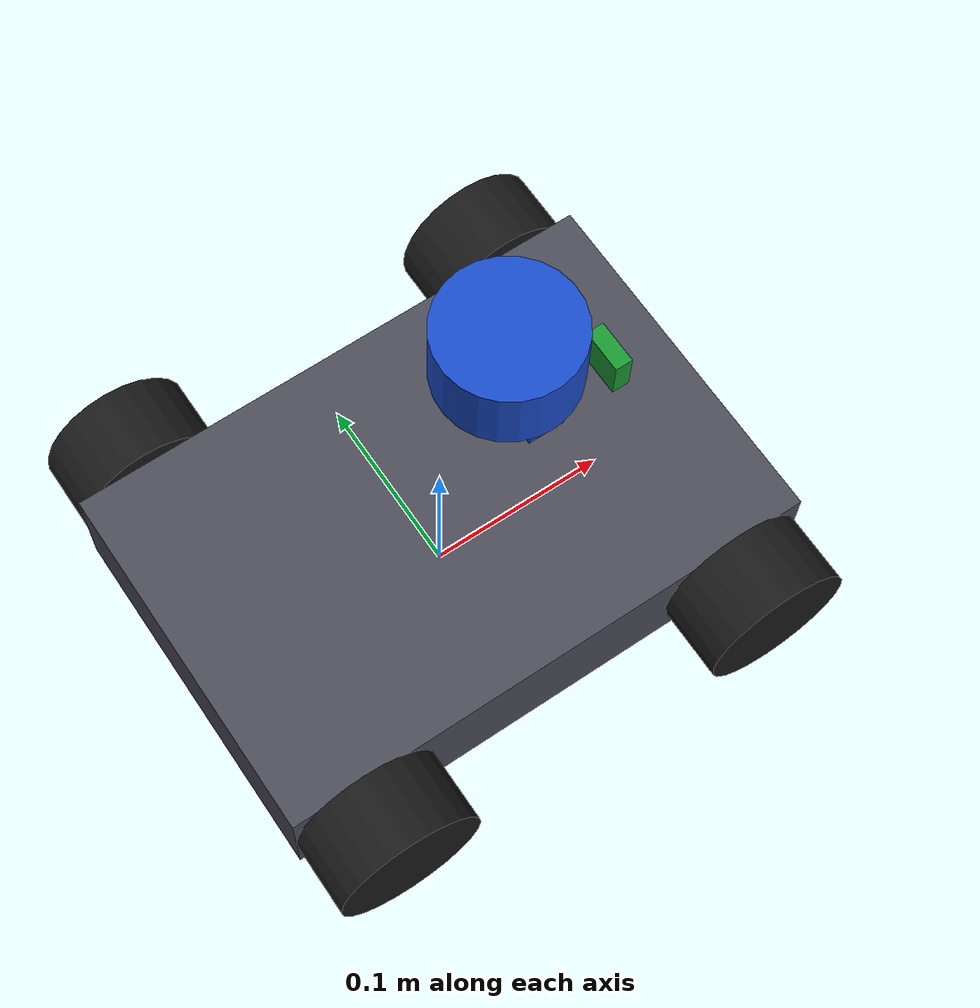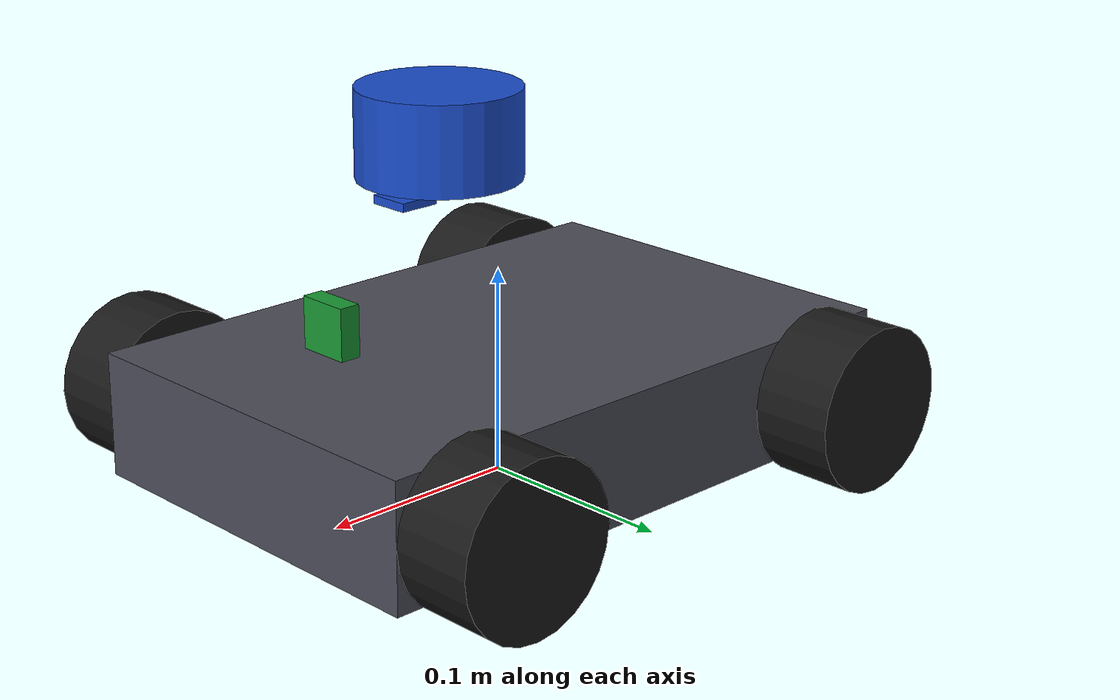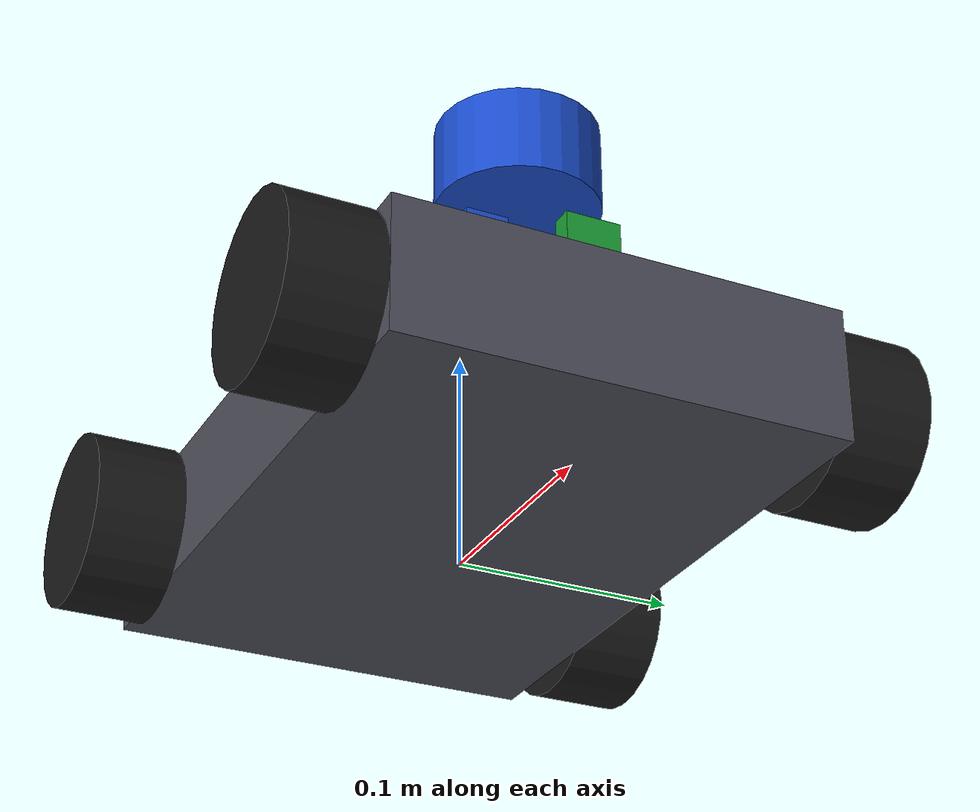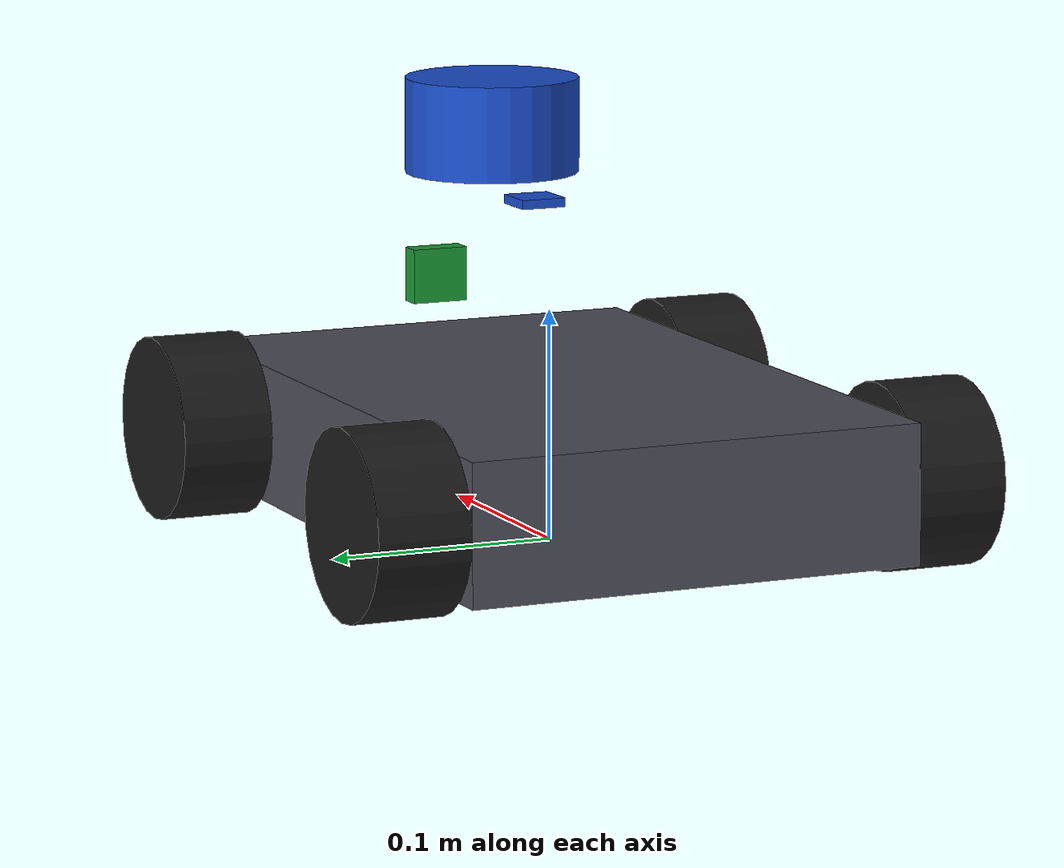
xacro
<?xml version="1.0"?>
<robot xmlns:xacro="http://www.ros.org/wiki/xacro" name="ai_car">

  <!-- 車体寸法 -->
  <xacro:property name="base_length" value="0.30"/>
  <xacro:property name="base_width"  value="0.20"/>
  <xacro:property name="base_height" value="0.06"/>
  <xacro:property name="base_mass"   value="2.0"/>

  <!-- メカナムホイール -->
  <xacro:property name="wheel_radius" value="0.04"/>
  <xacro:property name="wheel_width"  value="0.04"/>
  <xacro:property name="wheel_mass"   value="0.15"/>
  <xacro:property name="wheel_x"      value="0.11"/>
  <xacro:property name="wheel_y"      value="${base_width/2 + wheel_width/2}"/>
  <xacro:property name="wheel_z"      value="0.0"/>

  <!-- センサーの取り付け位置（battery_lidar_mount.scad の CAD 値）。
       base_link の原点は天板の中心（前後・左右）、車軸の高さ。x: 前、y: 左、z: 上 -->
  <xacro:property name="laser_x" value="0.043"/>   <!-- LiDAR の回転中心: 天板の中心から前 43 mm・左 8 mm -->
  <xacro:property name="laser_y" value="0.008"/>
  <xacro:property name="laser_yaw_deg" value="-176.2"/>  <!-- 前方カメラの正面に合わせた LiDAR の向き（dashboard.yaml の scan_angle_offset_deg と同じ） -->
  <xacro:property name="laser_h" value="0.175"/>   <!-- 光の高さ（床から）。取付面 162 mm + ヘッド内の発光部（推定） -->
  <xacro:property name="camera_x" value="0.106"/>  <!-- Camera Module 3 Wide のレンズの先: LiDAR の回転中心の真ん前 63 mm -->
  <xacro:property name="camera_y" value="0.008"/>
  <xacro:property name="camera_h" value="0.100"/>  <!-- レンズの高さ（床から。天板の上 28.1 mm） -->
  <xacro:property name="imu_x" value="0.045"/>     <!-- IMU の基板の中心: ふたの上、LiDAR のヘッドの下（天板の中心から前 45 mm・右 13 mm） -->
  <xacro:property name="imu_y" value="-0.013"/>
  <xacro:property name="imu_h" value="0.140"/>     <!-- 基板の高さ（床から） -->

  <material name="body_gray">
    <color rgba="0.3 0.3 0.35 1.0"/>
  </material>
  <material name="wheel_black">
    <color rgba="0.1 0.1 0.1 1.0"/>
  </material>
  <material name="sensor_blue">
    <color rgba="0.1 0.3 0.8 1.0"/>
  </material>
  <material name="sensor_green">
    <color rgba="0.1 0.6 0.2 1.0"/>
  </material>

  <xacro:macro name="box_inertia" params="m x y z">
    <inertial>
      <mass value="${m}"/>
      <origin xyz="0 0 0" rpy="0 0 0"/>
      <inertia ixx="${m*(y*y+z*z)/12.0}" ixy="0.0" ixz="0.0"
               iyy="${m*(x*x+z*z)/12.0}" iyz="0.0"
               izz="${m*(x*x+y*y)/12.0}"/>
    </inertial>
  </xacro:macro>

  <xacro:macro name="cylinder_inertia" params="m r h">
    <inertial>
      <mass value="${m}"/>
      <origin xyz="0 0 0" rpy="0 0 0"/>
      <inertia ixx="${m*(3*r*r+h*h)/12.0}" ixy="0.0" ixz="0.0"
               iyy="${m*(3*r*r+h*h)/12.0}" iyz="0.0"
               izz="${m*r*r/2.0}"/>
    </inertial>
  </xacro:macro>

  <!-- ベース -->
  <link name="base_footprint"/>

  <joint name="base_footprint_joint" type="fixed">
    <parent link="base_footprint"/>
    <child link="base_link"/>
    <origin xyz="0 0 ${wheel_radius}" rpy="0 0 0"/>
  </joint>

  <link name="base_link">
    <visual>
      <origin xyz="0 0 0" rpy="0 0 0"/>
      <geometry>
        <box size="${base_length} ${base_width} ${base_height}"/>
      </geometry>
      <material name="body_gray"/>
    </visual>
    <collision>
      <origin xyz="0 0 0" rpy="0 0 0"/>
      <geometry>
        <box size="${base_length} ${base_width} ${base_height}"/>
      </geometry>
    </collision>
    <xacro:box_inertia m="${base_mass}" x="${base_length}" y="${base_width}" z="${base_height}"/>
  </link>

  <!-- メカナムホイール (4輪) -->
  <xacro:macro name="mecanum_wheel" params="name x y">
    <link name="${name}_wheel_link">
      <visual>
        <origin xyz="0 0 0" rpy="${pi/2} 0 0"/>
        <geometry>
          <cylinder radius="${wheel_radius}" length="${wheel_width}"/>
        </geometry>
        <material name="wheel_black"/>
      </visual>
      <collision>
        <origin xyz="0 0 0" rpy="${pi/2} 0 0"/>
        <geometry>
          <cylinder radius="${wheel_radius}" length="${wheel_width}"/>
        </geometry>
      </collision>
      <xacro:cylinder_inertia m="${wheel_mass}" r="${wheel_radius}" h="${wheel_width}"/>
    </link>

    <joint name="${name}_wheel_joint" type="continuous">
      <parent link="base_link"/>
      <child link="${name}_wheel_link"/>
      <origin xyz="${x} ${y} ${wheel_z}" rpy="0 0 0"/>
      <axis xyz="0 1 0"/>
    </joint>
  </xacro:macro>

  <xacro:mecanum_wheel name="front_left"  x="${wheel_x}"  y="${wheel_y}"/>
  <xacro:mecanum_wheel name="front_right" x="${wheel_x}"  y="${-wheel_y}"/>
  <xacro:mecanum_wheel name="rear_left"   x="${-wheel_x}" y="${wheel_y}"/>
  <xacro:mecanum_wheel name="rear_right"  x="${-wheel_x}" y="${-wheel_y}"/>

  <!-- LiDAR: RPLIDAR C1（2026-11-05 交換）。寸法は C1（55.4 mm 角・高さ 33 mm）にまだ合わせていない。
       向き（laser_yaw_deg −176.2°）は C1 で実測（C1 の 0° は後ろ向き）。回転中心の位置・高さは A1M8 の値のまま -->
  <link name="laser">
    <visual>
      <origin xyz="0 0 0" rpy="0 0 0"/>
      <geometry>
        <cylinder radius="0.0375" length="0.041"/>
      </geometry>
      <material name="sensor_blue"/>
    </visual>
    <collision>
      <origin xyz="0 0 0" rpy="0 0 0"/>
      <geometry>
        <cylinder radius="0.0375" length="0.041"/>
      </geometry>
    </collision>
    <xacro:cylinder_inertia m="0.19" r="0.0375" h="0.041"/>
  </link>

  <joint name="laser_joint" type="fixed">
    <parent link="base_link"/>
    <child link="laser"/>
    <origin xyz="${laser_x} ${laser_y} ${laser_h - wheel_radius}" rpy="0 0 ${radians(laser_yaw_deg)}"/>
  </joint>

  <!-- カメラ: Camera Module 3 Wide（IMX708） -->
  <link name="camera_link">
    <visual>
      <origin xyz="0 0 0" rpy="0 0 0"/>
      <geometry>
        <box size="0.01 0.025 0.024"/>
      </geometry>
      <material name="sensor_green"/>
    </visual>
    <collision>
      <origin xyz="0 0 0" rpy="0 0 0"/>
      <geometry>
        <box size="0.01 0.025 0.024"/>
      </geometry>
    </collision>
    <xacro:box_inertia m="0.004" x="0.01" y="0.025" z="0.024"/>
  </link>

  <joint name="camera_joint" type="fixed">
    <parent link="base_link"/>
    <child link="camera_link"/>
    <origin xyz="${camera_x} ${camera_y} ${camera_h - wheel_radius}" rpy="0 0 0"/>
  </joint>

  <!-- 光学座標系 (REP-103: z前方, x右, y下) -->
  <link name="camera_optical_frame"/>
  <joint name="camera_optical_joint" type="fixed">
    <parent link="camera_link"/>
    <child link="camera_optical_frame"/>
    <origin xyz="0 0 0" rpy="${-pi/2} 0 ${-pi/2}"/>
  </joint>

  <!-- IMU: GY-BNO055 -->
  <link name="imu_link">
    <visual>
      <origin xyz="0 0 0" rpy="0 0 0"/>
      <geometry>
        <box size="0.02 0.02 0.004"/>
      </geometry>
      <material name="sensor_blue"/>
    </visual>
    <xacro:box_inertia m="0.005" x="0.02" y="0.02" z="0.004"/>
  </link>

  <joint name="imu_joint" type="fixed">
    <parent link="base_link"/>
    <child link="imu_link"/>
    <origin xyz="${imu_x} ${imu_y} ${imu_h - wheel_radius}" rpy="0 0 0"/>
  </joint>

</robot>
